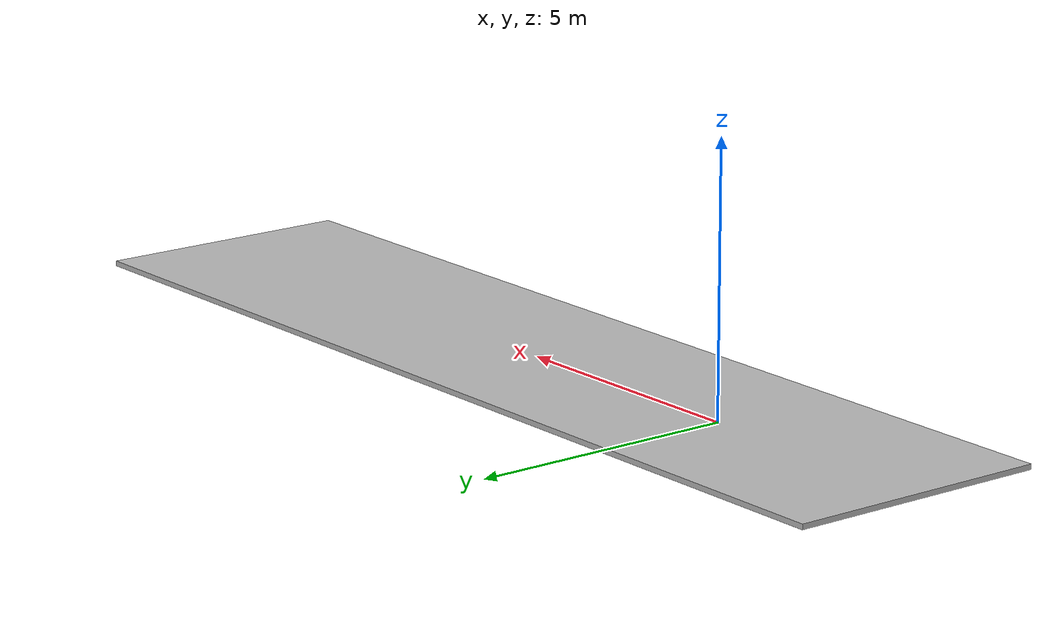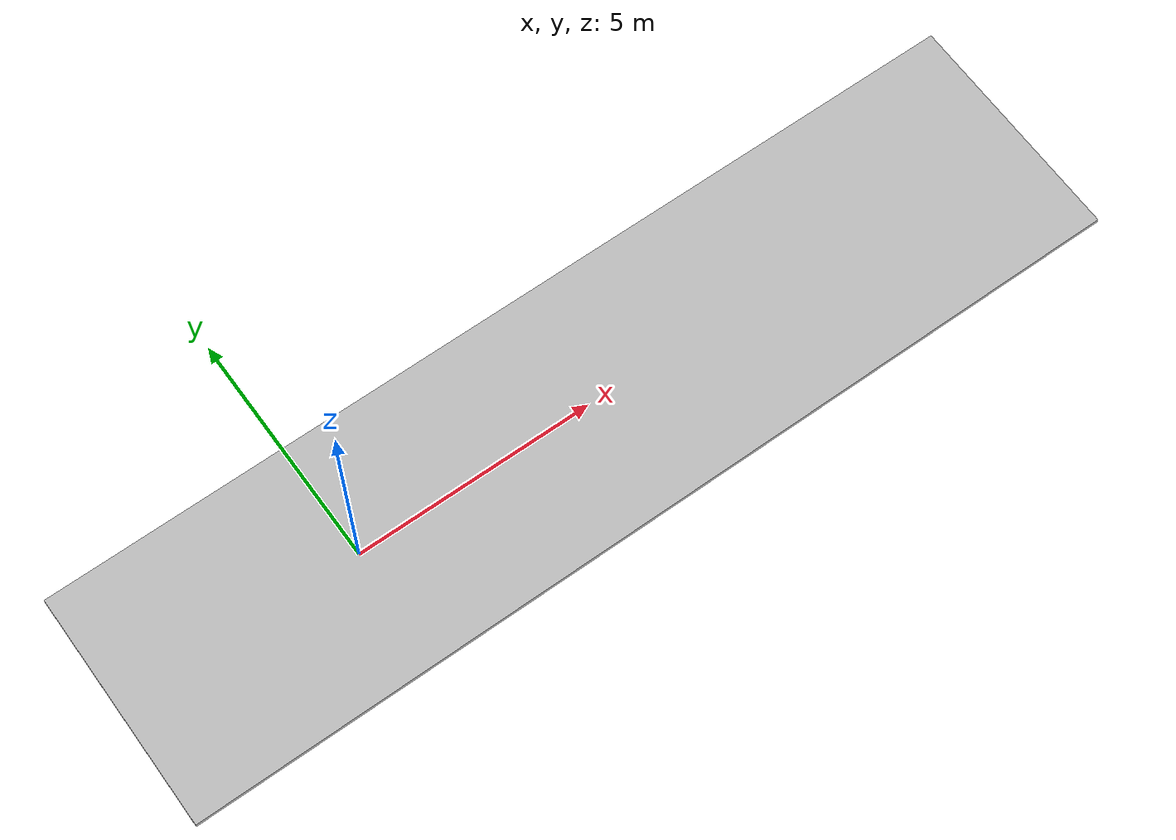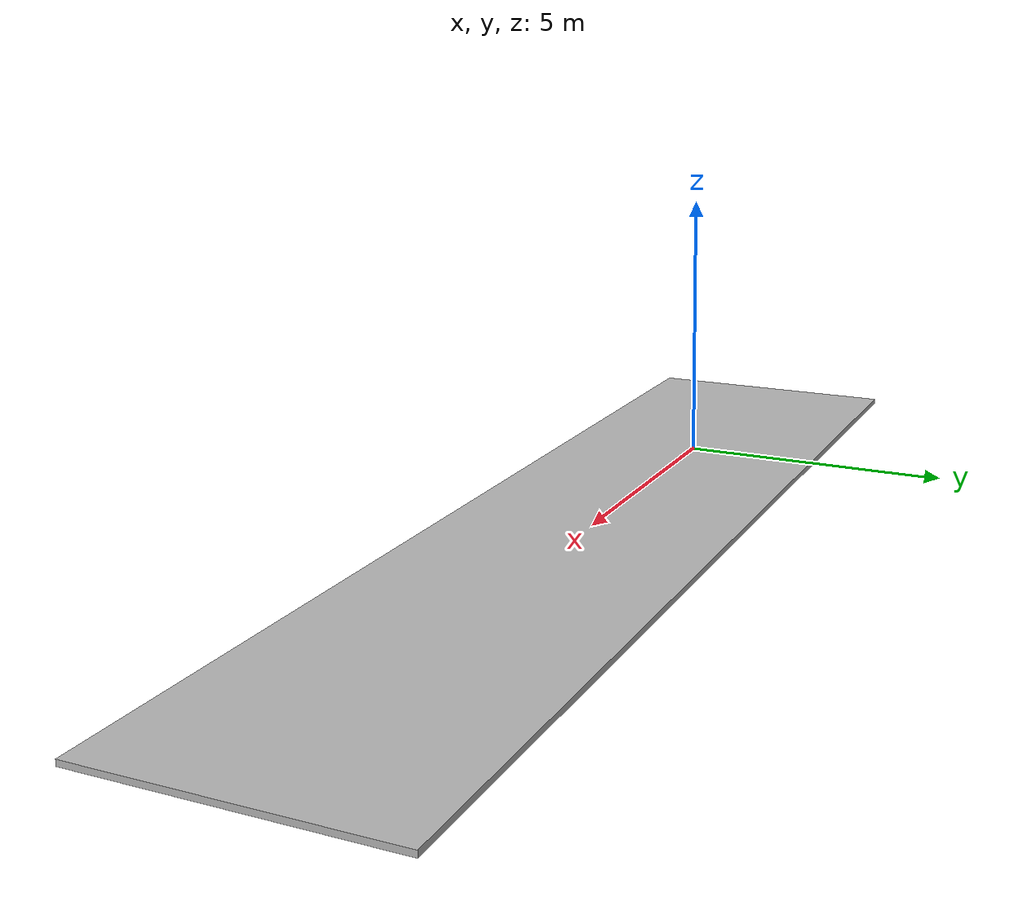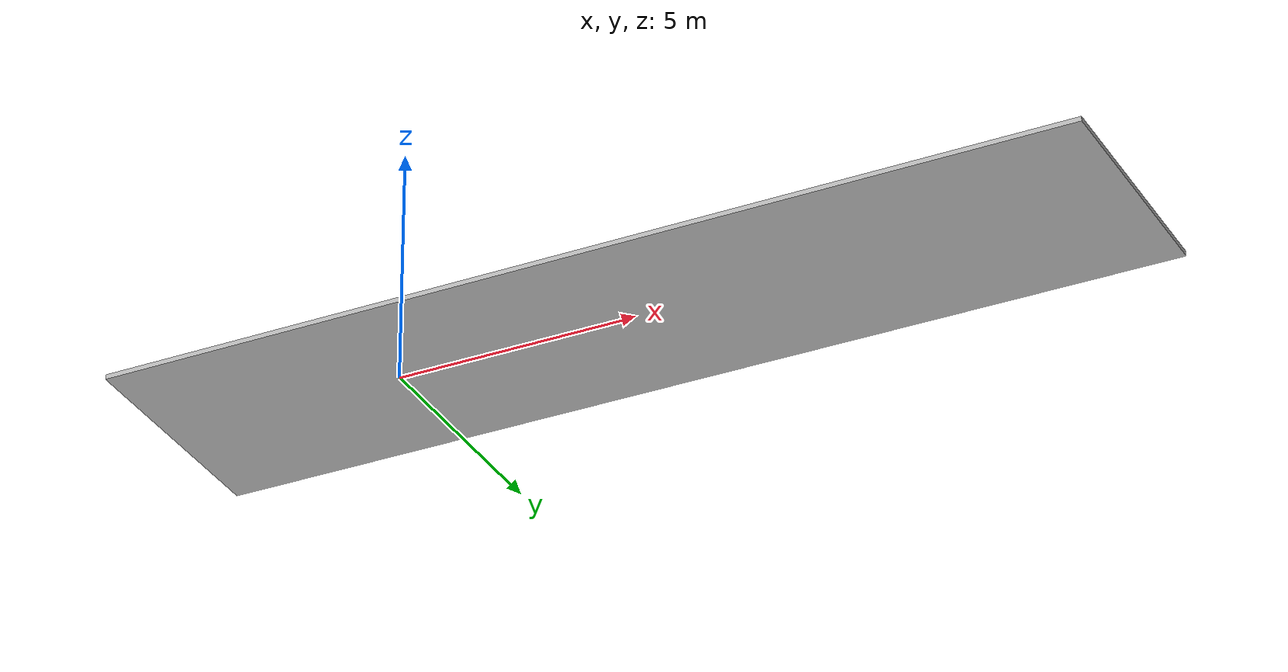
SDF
<?xml version="1.0" ?>
<sdf version="1.6">
  <model name="road">
    <static>true</static>

    <link name="road_link">
      <pose>5 0 0 0 0 0</pose>

      <collision name="collision">
        <geometry>
          <box>
            <size>20 5 0.1</size>
          </box>
        </geometry>
      </collision>

      <visual name="visual">
        <geometry>
          <box>
            <size>20 5 0.1</size>
          </box>
        </geometry>

        <!-- FORCE texture using absolute path -->
        <material>
          <script>
            <uri>file:///home/vboxuser/catkin_d/src/project/models/road/materials/scripts</uri>
            <uri>file:///home/vboxuser/catkin_d/src/project/models/road/materials/textures</uri>
            <name>Road/Lane</name>
          </script>
        </material>

        <!-- Disable lighting so texture shows clearly -->
        <lighting>false</lighting>
      </visual>
    </link>
  </model>
</sdf>
